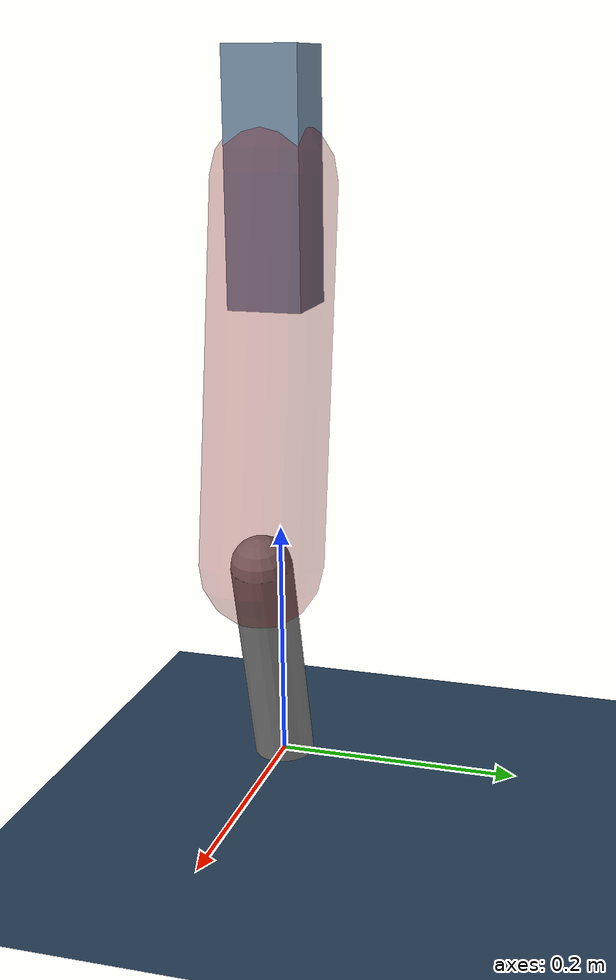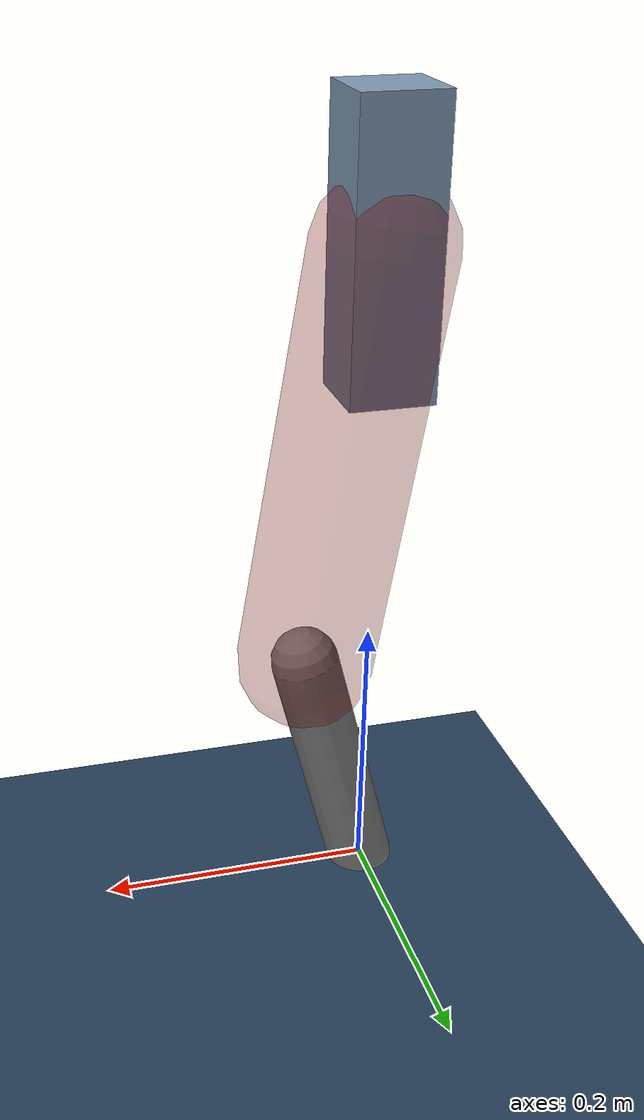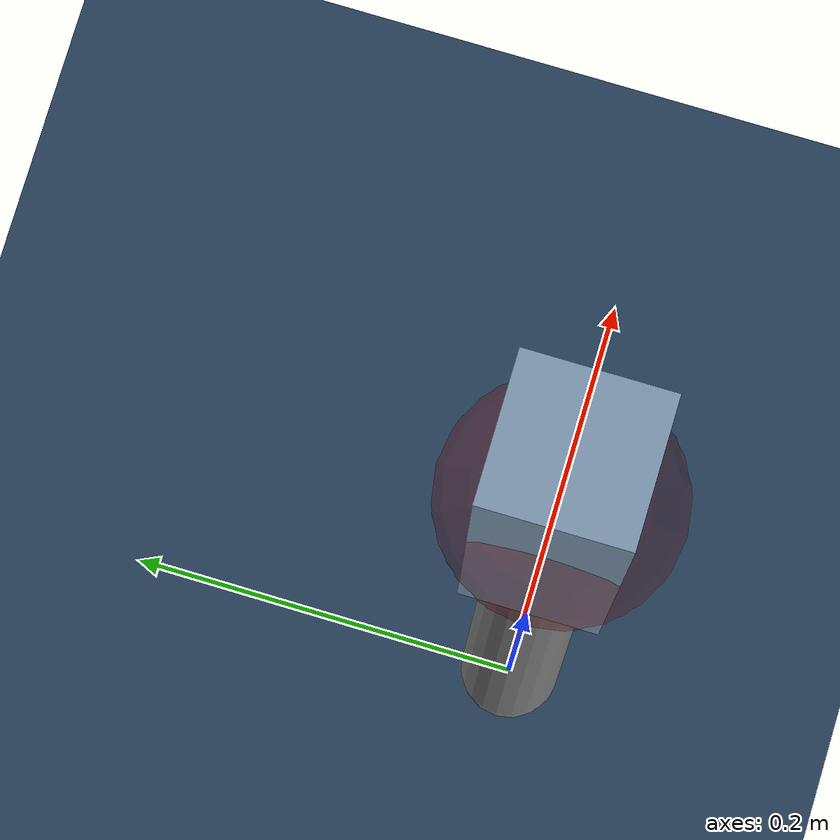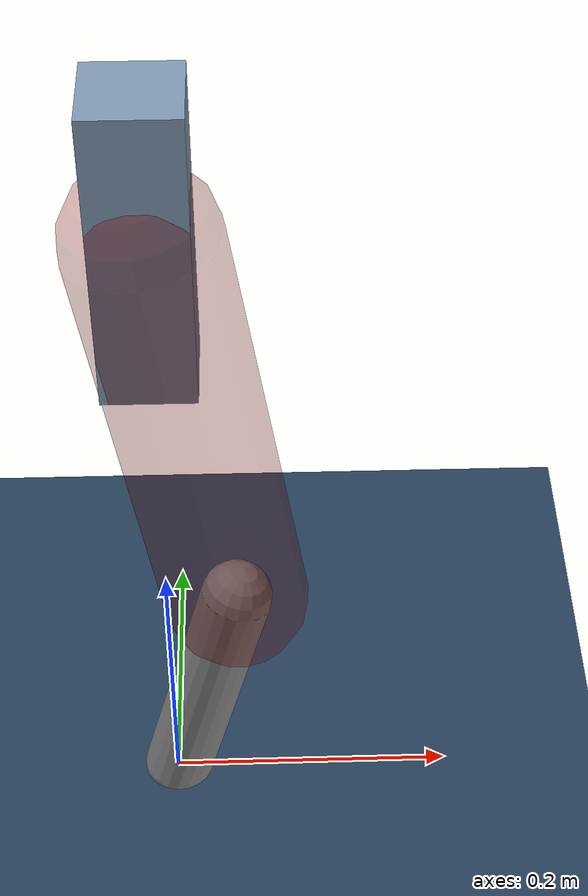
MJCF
<mujoco model="Hopper2D">
	<compiler inertiafromgeom="true" angle="radian" />
	<option timestep="0.001" integrator="implicit" cone="elliptic" solver="Newton" tolerance="1e-10" />

	<default>
		<geom contype="1" conaffinity="1" condim="3" friction="2 0.005 0.0001" solref="0.005 1" />
		<joint limited="true" damping="0.1" />
	</default>

	<asset>
		<texture name="skybox" type="skybox" builtin="gradient" rgb1=".4 .6 .8" rgb2="0 0 0" width="800" height="800" />
		<texture name="grid" type="2d" builtin="checker" rgb1=".1 .2 .3" rgb2=".2 .3 .4" width="300" height="300" mark="edge" markrgb=".2 .3 .4" />
		<material name="ground" texture="grid" texrepeat="1 1" texuniform="true" reflectance="0.1" />
		<material name="leg" rgba="0.5 0.6 0.7 1" />
	</asset>

	<worldbody>

		<geom name="floor" type="plane" size="5 5 0.25" material="ground" />

		<light directional="false" diffuse="0.8 0.8 0.8" specular="0.3 0.3 0.3" pos="0 0 2" dir="0 0 -1" />
		<light mode="targetbodycom" target="base" directional="false" diffuse="0.8 0.8 0.8" specular="0.3 0.3 0.3" pos="0 0 2" dir="0 0 -1" />

		<camera name="fixed" pos="0 -2 1" xyaxes="1 0 0 0 0 1" />
		<camera name="tracking" mode="trackcom" pos="0 -3 1" />

		<body name="root" pos="0 0 0.48491051320546213">
			<joint name="slide_x" type="slide" axis="1 0 0" range="-100 100" />
			<joint name="slide_z" type="slide" axis="0 0 1" range="0 10" />

			<body name="base" pos="0 0 0">
				<geom name="torso" type="box" size="0.03 0.03 0.1" mass="2.4059999999999997" material="leg" />

				<body name="link1" pos="0 0 0" euler="0 1.4128224164663585 0">
					<joint type="hinge" axis="0 -1 0" pos="0 0 0" name="hinge1" limited="true" range="-3.14 3.14" stiffness="0" damping="0.1" />
					<geom name="thigh" type="capsule" fromto="0 0 0 0.3054670296346801 0 0" size="0.05" rgba="0.5 0 0 0.3" mass="1.0035609800136363" />

					<body name="link2" pos="0.3054670296346801 0 0" euler="0 0.41444220457074127 0">
						<joint type="hinge" axis="0 -1 0" pos="0 0 0" name="hinge2" limited="true" range="-3.14 3.14" stiffness="0" damping="0.1" />
						<geom name="shank" type="capsule" fromto="0 0 0 0.18944348357078206 0 0" size="0.025" mass="0.39195478685662566" />

					</body>
				</body>
			</body>
		</body>
	</worldbody>

	<actuator>
		<motor name="torque1" joint="hinge1" ctrlrange="-66.1235277580284 66.1235277580284" ctrllimited="true" gear="1" />
		<motor name="torque2" joint="hinge2" ctrlrange="-96.44656815045333 96.44656815045333" ctrllimited="true" gear="1" />
	</actuator>
</mujoco>
